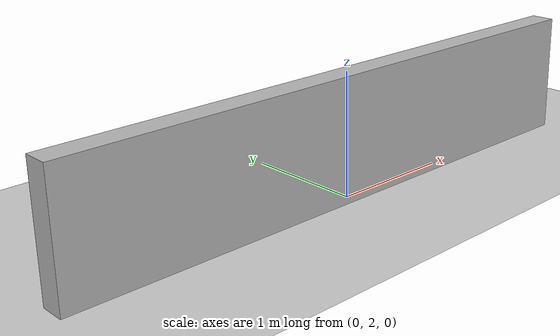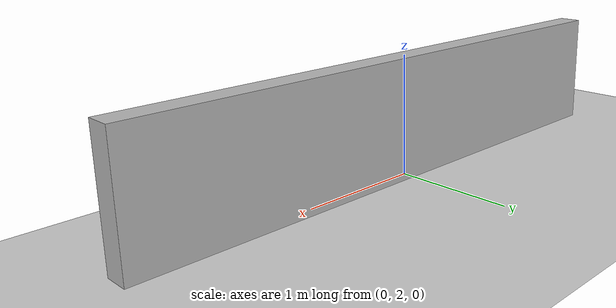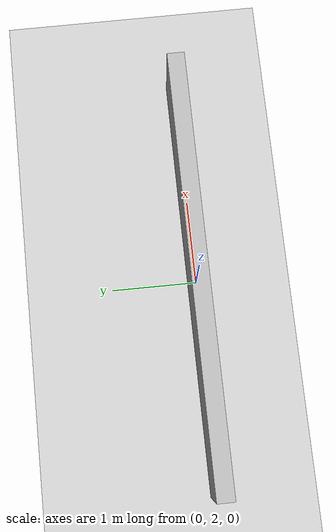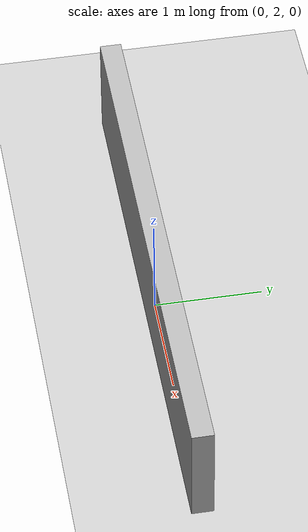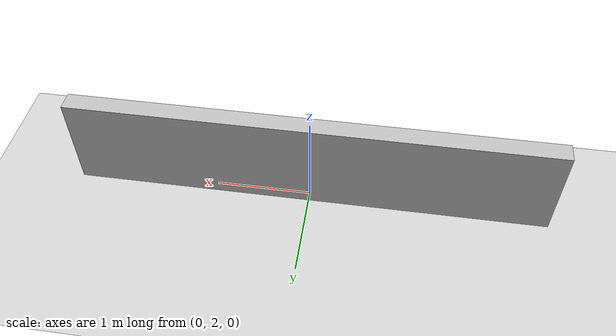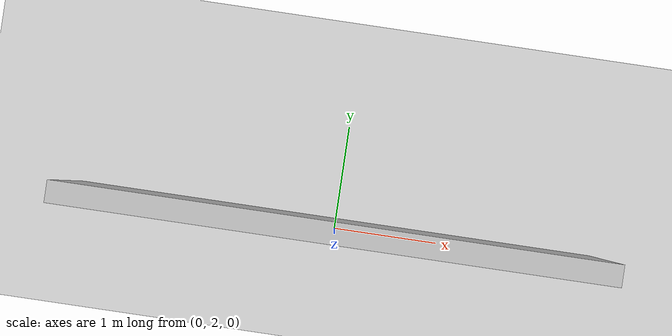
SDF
<?xml version="1.0" ?>
<sdf version="1.7">
  <world name="simple_env">
    <include>
      <uri>model://ground_plane</uri>
    </include>
    <include>
      <uri>model://sun</uri>
    </include>
    <!-- 添加墙壁或障碍，例如一个盒子 -->
    <model name="wall">
      <pose>0 2 0.5 0 0 0</pose>
      <static>true</static>
      <link name="link">
        <collision name="collision">
          <geometry><box><size>5 0.2 1</size></box></geometry>
        </collision>
        <visual name="visual">
          <geometry><box><size>5 0.2 1</size></box></geometry>
        </visual>
      </link>
    </model>
  </world>
</sdf>
